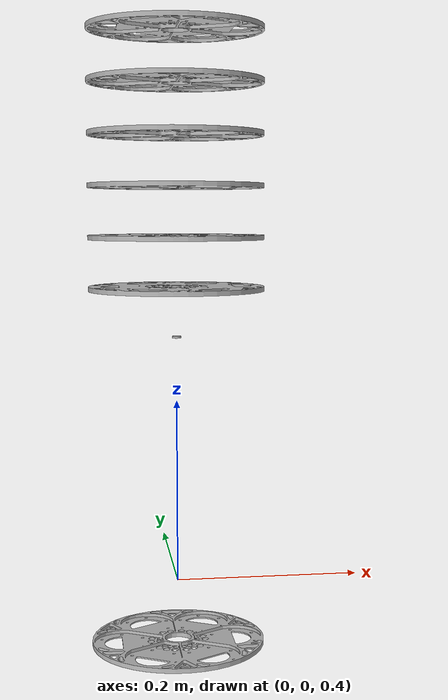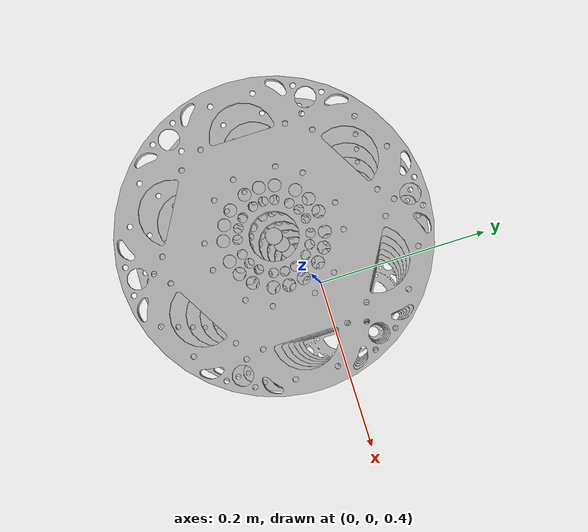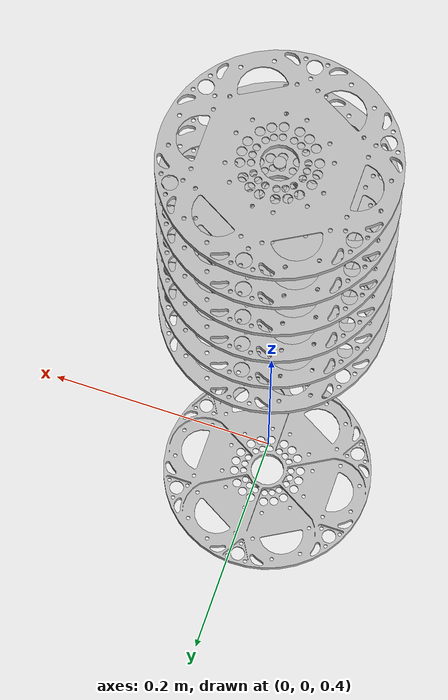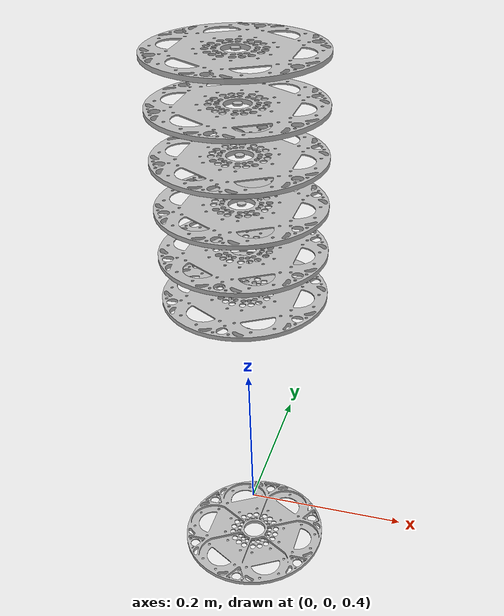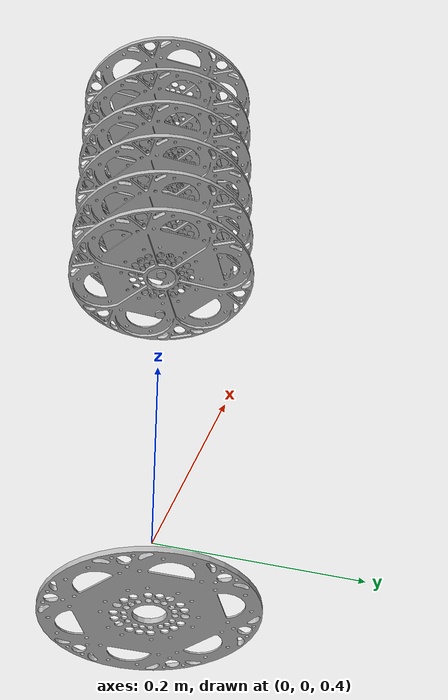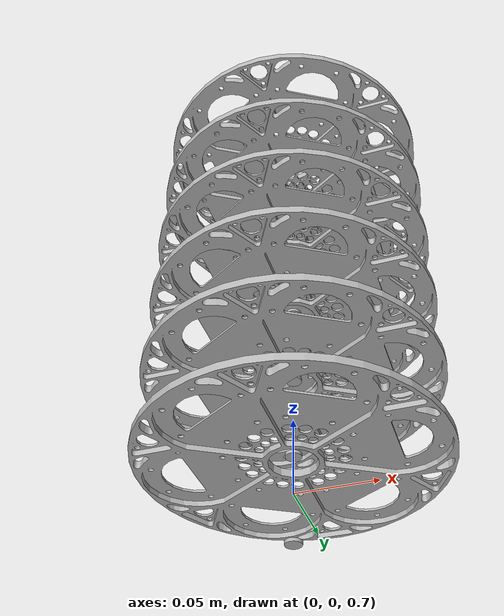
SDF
<sdf version='1.7'>
  <model name='origarmRigidKE'>
    <joint name='fixed' type='fixed'>
      <pose relative_to='__model__'>0 0 1 3.14159 -0 0</pose>
      <parent>world</parent>
      <child>plate_-1</child>
    </joint>
    <link name='plate_-1'>
      <pose relative_to='fixed'>0 0 0 0 -0 0</pose>
      <inertial>
        <pose>0 0 0 0 -0 0</pose>
        <mass>0.127</mass>
        <inertia>
          <ixx>0.00032197</ixx>
          <ixy>0</ixy>
          <ixz>0</ixz>
          <iyy>0.00032197</iyy>
          <iyz>0</iyz>
          <izz>0.00064284</izz>
        </inertia>
      </inertial>
      <collision name='plate_-1_collision'>
        <pose>0 0 0 0 -0 0</pose>
        <geometry>
          <cylinder>
            <length>0.005</length>
            <radius>0.095</radius>
          </cylinder>
        </geometry>
      </collision>
      <visual name='plate_-1_visual'>
        <pose>0 0 0 0 -0 0</pose>
        <geometry>
          <mesh>
            <scale>1 1 1</scale>
            <uri>model://origarm_ros/model/mesh/origarmPlate_m.STL</uri>
          </mesh>
        </geometry>
      </visual>
    </link>
    <joint name='phantom_joint_segment_0_1_beta' type='revolute'>
      <pose relative_to='plate_-1'>0 0 0 0 -0 0</pose>
      <parent>plate_-1</parent>
      <child>phantom_link_0_1</child>
      <axis>
        <xyz>0 0 1</xyz>
        <limit>
          <lower>-6.28319</lower>
          <upper>6.28319</upper>
          <effort>200</effort>
          <velocity>20</velocity>
        </limit>
        <dynamics>
          <damping>0.7</damping>
          <friction>0.3</friction>
          <spring_reference>0</spring_reference>
          <spring_stiffness>0</spring_stiffness>
        </dynamics>
      </axis>
      <physics>
        <ode>
          <limit>
            <cfm>0</cfm>
            <erp>0.2</erp>
          </limit>
        </ode>
      </physics>
    </joint>
    <link name='phantom_link_0_1'>
      <pose relative_to='phantom_joint_segment_0_1_beta'>0 0 0 0 -0 0</pose>
      <inertial>
        <pose>0 0 0 0 -0 0</pose>
        <mass>0.01</mass>
        <inertia>
          <ixx>0.001</ixx>
          <ixy>0</ixy>
          <ixz>0</ixz>
          <iyy>0.001</iyy>
          <iyz>0</iyz>
          <izz>0.001</izz>
        </inertia>
      </inertial>
      <visual name='phantom_link_0_1_visual'>
        <pose>0 0 0 0 -0 0</pose>
        <geometry>
          <cylinder>
            <length>0.002</length>
            <radius>0.005</radius>
          </cylinder>
        </geometry>
      </visual>
      <gravity>1</gravity>
      <velocity_decay>
        <linear>0.1</linear>
        <angular>0.1</angular>
      </velocity_decay>
      <self_collide>1</self_collide>
      <gravity>0</gravity>
    </link>
    <joint name='phantom_joint_segment_0_2_alpha2' type='revolute'>
      <pose relative_to='phantom_link_0_1'>0 0 0 0 -0 0</pose>
      <parent>phantom_link_0_1</parent>
      <child>phantom_link_0_2</child>
      <axis>
        <xyz>0 1 0</xyz>
        <limit>
          <lower>0</lower>
          <upper>0.25</upper>
          <effort>200</effort>
          <velocity>20</velocity>
        </limit>
        <dynamics>
          <damping>0.7</damping>
          <friction>0.3</friction>
          <spring_reference>0</spring_reference>
          <spring_stiffness>20</spring_stiffness>
        </dynamics>
      </axis>
      <physics>
        <ode>
          <limit>
            <cfm>0</cfm>
            <erp>0.2</erp>
          </limit>
        </ode>
      </physics>
    </joint>
    <link name='phantom_link_0_2'>
      <pose relative_to='phantom_joint_segment_0_2_alpha2'>0 0 0 0 -0 0</pose>
      <inertial>
        <pose>0 0 0 0 -0 0</pose>
        <mass>0.01</mass>
        <inertia>
          <ixx>0.001</ixx>
          <ixy>0</ixy>
          <ixz>0</ixz>
          <iyy>0.001</iyy>
          <iyz>0</iyz>
          <izz>0.001</izz>
        </inertia>
      </inertial>
      <visual name='phantom_link_0_2_visual'>
        <pose>0 0 0 0 -0 0</pose>
        <geometry>
          <cylinder>
            <length>0.002</length>
            <radius>0.005</radius>
          </cylinder>
        </geometry>
      </visual>
      <gravity>1</gravity>
      <velocity_decay>
        <linear>0.1</linear>
        <angular>0.1</angular>
      </velocity_decay>
      <self_collide>1</self_collide>
      <gravity>0</gravity>
    </link>
    <joint name='phantom_joint_segment_0_3_translation' type='prismatic'>
      <pose relative_to='phantom_link_0_2'>0 0 0.055 0 -0 0</pose>
      <parent>phantom_link_0_2</parent>
      <child>phantom_link_0_3</child>
      <axis>
        <xyz>0 0 1</xyz>
        <limit>
          <lower>-0.02</lower>
          <upper>0.03</upper>
          <effort>200</effort>
          <velocity>20</velocity>
        </limit>
        <dynamics>
          <damping>0.7</damping>
          <friction>0.5</friction>
          <spring_reference>0</spring_reference>
          <spring_stiffness>15000</spring_stiffness>
        </dynamics>
      </axis>
      <physics>
        <ode>
          <limit>
            <cfm>0</cfm>
            <erp>0.2</erp>
          </limit>
        </ode>
      </physics>
    </joint>
    <link name='phantom_link_0_3'>
      <pose relative_to='phantom_joint_segment_0_3_translation'>0 0 0 0 -0 0</pose>
      <inertial>
        <pose>0 0 0 0 -0 0</pose>
        <mass>0.01</mass>
        <inertia>
          <ixx>0.001</ixx>
          <ixy>0</ixy>
          <ixz>0</ixz>
          <iyy>0.001</iyy>
          <iyz>0</iyz>
          <izz>0.001</izz>
        </inertia>
      </inertial>
      <visual name='phantom_link_0_3_visual'>
        <pose>0 0 0 0 -0 0</pose>
        <geometry>
          <cylinder>
            <length>0.002</length>
            <radius>0.005</radius>
          </cylinder>
        </geometry>
      </visual>
      <gravity>1</gravity>
      <velocity_decay>
        <linear>0.1</linear>
        <angular>0.1</angular>
      </velocity_decay>
      <self_collide>1</self_collide>
      <gravity>0</gravity>
    </link>
    <joint name='phantom_joint_segment_0_4_alpha2' type='revolute'>
      <pose relative_to='phantom_link_0_3'>0 0 0 0 -0 0</pose>
      <parent>phantom_link_0_3</parent>
      <child>phantom_link_0_4</child>
      <axis>
        <xyz>0 1 0</xyz>
        <limit>
          <lower>0</lower>
          <upper>0.25</upper>
          <effort>200</effort>
          <velocity>20</velocity>
        </limit>
        <dynamics>
          <damping>0.7</damping>
          <friction>0.3</friction>
          <spring_reference>0</spring_reference>
          <spring_stiffness>20</spring_stiffness>
        </dynamics>
      </axis>
      <physics>
        <ode>
          <limit>
            <cfm>0</cfm>
            <erp>0.2</erp>
          </limit>
        </ode>
      </physics>
    </joint>
    <link name='phantom_link_0_4'>
      <pose relative_to='phantom_joint_segment_0_4_alpha2'>0 0 0 0 -0 0</pose>
      <inertial>
        <pose>0 0 0 0 -0 0</pose>
        <mass>0.01</mass>
        <inertia>
          <ixx>0.001</ixx>
          <ixy>0</ixy>
          <ixz>0</ixz>
          <iyy>0.001</iyy>
          <iyz>0</iyz>
          <izz>0.001</izz>
        </inertia>
      </inertial>
      <visual name='phantom_link_0_4_visual'>
        <pose>0 0 0 0 -0 0</pose>
        <geometry>
          <cylinder>
            <length>0.002</length>
            <radius>0.005</radius>
          </cylinder>
        </geometry>
      </visual>
      <gravity>1</gravity>
      <velocity_decay>
        <linear>0.1</linear>
        <angular>0.1</angular>
      </velocity_decay>
      <self_collide>1</self_collide>
      <gravity>0</gravity>
    </link>
    <joint name='phantom_joint_segment_0_5_betaN' type='revolute'>
      <pose relative_to='phantom_link_0_4'>0 0 0 0 -0 0</pose>
      <parent>phantom_link_0_4</parent>
      <child>plate_0</child>
      <axis>
        <xyz>0 0 1</xyz>
        <limit>
          <lower>-6.28319</lower>
          <upper>6.28319</upper>
          <effort>200</effort>
          <velocity>20</velocity>
        </limit>
        <dynamics>
          <damping>0.7</damping>
          <friction>0.3</friction>
          <spring_reference>0</spring_reference>
          <spring_stiffness>0</spring_stiffness>
        </dynamics>
      </axis>
      <physics>
        <ode>
          <limit>
            <cfm>0</cfm>
            <erp>0.2</erp>
          </limit>
        </ode>
      </physics>
    </joint>
    <link name='plate_0'>
      <pose relative_to='phantom_joint_segment_0_5_betaN'>0 0 0 0 -0 0</pose>
      <inertial>
        <pose>0 0 0 0 -0 0</pose>
        <mass>0.127</mass>
        <inertia>
          <ixx>0.00032197</ixx>
          <ixy>0</ixy>
          <ixz>0</ixz>
          <iyy>0.00032197</iyy>
          <iyz>0</iyz>
          <izz>0.00064284</izz>
        </inertia>
      </inertial>
      <collision name='plate_0_collision'>
        <pose>0 0 0 0 -0 0</pose>
        <geometry>
          <cylinder>
            <length>0.005</length>
            <radius>0.095</radius>
          </cylinder>
        </geometry>
        <surface>
          <contact>
            <ode>
              <kp>1e+15</kp>
              <kd>1e+13</kd>
            </ode>
          </contact>
          <friction>
            <ode>
              <mu>0.2</mu>
              <mu2>0.2</mu2>
            </ode>
          </friction>
        </surface>
      </collision>
      <visual name='plate_0_visual'>
        <pose>0 0 0 0 -0 0</pose>
        <geometry>
          <mesh>
            <scale>1 1 1</scale>
            <uri>model://origarm_ros/model/mesh/origarmPlate_m.STL</uri>
          </mesh>
        </geometry>
        <material>
          <script>
            <name>Gazebo/aluminum</name>
            <uri>file://media/materials/scripts/gazebo.material</uri>
          </script>
        </material>
      </visual>
      <gravity>1</gravity>
      <velocity_decay>
        <linear>0.1</linear>
        <angular>0.1</angular>
      </velocity_decay>
    </link>
    <joint name='phantom_joint_segment_1_1_beta' type='revolute'>
      <pose relative_to='plate_0'>0 0 0 0 -0 0</pose>
      <parent>plate_0</parent>
      <child>phantom_link_1_1</child>
      <axis>
        <xyz>0 0 1</xyz>
        <limit>
          <lower>-6.28319</lower>
          <upper>6.28319</upper>
          <effort>200</effort>
          <velocity>20</velocity>
        </limit>
        <dynamics>
          <damping>0.7</damping>
          <friction>0.3</friction>
          <spring_reference>0</spring_reference>
          <spring_stiffness>0</spring_stiffness>
        </dynamics>
      </axis>
      <physics>
        <ode>
          <limit>
            <cfm>0</cfm>
            <erp>0.2</erp>
          </limit>
        </ode>
      </physics>
    </joint>
    <link name='phantom_link_1_1'>
      <pose relative_to='phantom_joint_segment_1_1_beta'>0 0 0 0 -0 0</pose>
      <inertial>
        <pose>0 0 0 0 -0 0</pose>
        <mass>0.01</mass>
        <inertia>
          <ixx>0.001</ixx>
          <ixy>0</ixy>
          <ixz>0</ixz>
          <iyy>0.001</iyy>
          <iyz>0</iyz>
          <izz>0.001</izz>
        </inertia>
      </inertial>
      <visual name='phantom_link_1_1_visual'>
        <pose>0 0 0 0 -0 0</pose>
        <geometry>
          <cylinder>
            <length>0.002</length>
            <radius>0.005</radius>
          </cylinder>
        </geometry>
      </visual>
      <gravity>1</gravity>
      <velocity_decay>
        <linear>0.1</linear>
        <angular>0.1</angular>
      </velocity_decay>
      <self_collide>1</self_collide>
      <gravity>0</gravity>
    </link>
    <joint name='phantom_joint_segment_1_2_alpha2' type='revolute'>
      <pose relative_to='phantom_link_1_1'>0 0 0 0 -0 0</pose>
      <parent>phantom_link_1_1</parent>
      <child>phantom_link_1_2</child>
      <axis>
        <xyz>0 1 0</xyz>
        <limit>
          <lower>0</lower>
          <upper>0.25</upper>
          <effort>200</effort>
          <velocity>20</velocity>
        </limit>
        <dynamics>
          <damping>0.7</damping>
          <friction>0.3</friction>
          <spring_reference>0</spring_reference>
          <spring_stiffness>20</spring_stiffness>
        </dynamics>
      </axis>
      <physics>
        <ode>
          <limit>
            <cfm>0</cfm>
            <erp>0.2</erp>
          </limit>
        </ode>
      </physics>
    </joint>
    <link name='phantom_link_1_2'>
      <pose relative_to='phantom_joint_segment_1_2_alpha2'>0 0 0 0 -0 0</pose>
      <inertial>
        <pose>0 0 0 0 -0 0</pose>
        <mass>0.01</mass>
        <inertia>
          <ixx>0.001</ixx>
          <ixy>0</ixy>
          <ixz>0</ixz>
          <iyy>0.001</iyy>
          <iyz>0</iyz>
          <izz>0.001</izz>
        </inertia>
      </inertial>
      <visual name='phantom_link_1_2_visual'>
        <pose>0 0 0 0 -0 0</pose>
        <geometry>
          <cylinder>
            <length>0.002</length>
            <radius>0.005</radius>
          </cylinder>
        </geometry>
      </visual>
      <gravity>1</gravity>
      <velocity_decay>
        <linear>0.1</linear>
        <angular>0.1</angular>
      </velocity_decay>
      <self_collide>1</self_collide>
      <gravity>0</gravity>
    </link>
    <joint name='phantom_joint_segment_1_3_translation' type='prismatic'>
      <pose relative_to='phantom_link_1_2'>0 0 0.055 0 -0 0</pose>
      <parent>phantom_link_1_2</parent>
      <child>phantom_link_1_3</child>
      <axis>
        <xyz>0 0 1</xyz>
        <limit>
          <lower>-0.02</lower>
          <upper>0.03</upper>
          <effort>200</effort>
          <velocity>20</velocity>
        </limit>
        <dynamics>
          <damping>0.7</damping>
          <friction>0.5</friction>
          <spring_reference>0</spring_reference>
          <spring_stiffness>15000</spring_stiffness>
        </dynamics>
      </axis>
      <physics>
        <ode>
          <limit>
            <cfm>0</cfm>
            <erp>0.2</erp>
          </limit>
        </ode>
      </physics>
    </joint>
    <link name='phantom_link_1_3'>
      <pose relative_to='phantom_joint_segment_1_3_translation'>0 0 0 0 -0 0</pose>
      <inertial>
        <pose>0 0 0 0 -0 0</pose>
        <mass>0.01</mass>
        <inertia>
          <ixx>0.001</ixx>
          <ixy>0</ixy>
          <ixz>0</ixz>
          <iyy>0.001</iyy>
          <iyz>0</iyz>
          <izz>0.001</izz>
        </inertia>
      </inertial>
      <visual name='phantom_link_1_3_visual'>
        <pose>0 0 0 0 -0 0</pose>
        <geometry>
          <cylinder>
            <length>0.002</length>
            <radius>0.005</radius>
          </cylinder>
        </geometry>
      </visual>
      <gravity>1</gravity>
      <velocity_decay>
        <linear>0.1</linear>
        <angular>0.1</angular>
      </velocity_decay>
      <self_collide>1</self_collide>
      <gravity>0</gravity>
    </link>
    <joint name='phantom_joint_segment_1_4_alpha2' type='revolute'>
      <pose relative_to='phantom_link_1_3'>0 0 0 0 -0 0</pose>
      <parent>phantom_link_1_3</parent>
      <child>phantom_link_1_4</child>
      <axis>
        <xyz>0 1 0</xyz>
        <limit>
          <lower>0</lower>
          <upper>0.25</upper>
          <effort>200</effort>
          <velocity>20</velocity>
        </limit>
        <dynamics>
          <damping>0.7</damping>
          <friction>0.3</friction>
          <spring_reference>0</spring_reference>
          <spring_stiffness>20</spring_stiffness>
        </dynamics>
      </axis>
      <physics>
        <ode>
          <limit>
            <cfm>0</cfm>
            <erp>0.2</erp>
          </limit>
        </ode>
      </physics>
    </joint>
    <link name='phantom_link_1_4'>
      <pose relative_to='phantom_joint_segment_1_4_alpha2'>0 0 0 0 -0 0</pose>
      <inertial>
        <pose>0 0 0 0 -0 0</pose>
        <mass>0.01</mass>
        <inertia>
          <ixx>0.001</ixx>
          <ixy>0</ixy>
          <ixz>0</ixz>
          <iyy>0.001</iyy>
          <iyz>0</iyz>
          <izz>0.001</izz>
        </inertia>
      </inertial>
      <visual name='phantom_link_1_4_visual'>
        <pose>0 0 0 0 -0 0</pose>
        <geometry>
          <cylinder>
            <length>0.002</length>
            <radius>0.005</radius>
          </cylinder>
        </geometry>
      </visual>
      <gravity>1</gravity>
      <velocity_decay>
        <linear>0.1</linear>
        <angular>0.1</angular>
      </velocity_decay>
      <self_collide>1</self_collide>
      <gravity>0</gravity>
    </link>
    <joint name='phantom_joint_segment_1_5_betaN' type='revolute'>
      <pose relative_to='phantom_link_1_4'>0 0 0 0 -0 0</pose>
      <parent>phantom_link_1_4</parent>
      <child>plate_1</child>
      <axis>
        <xyz>0 0 1</xyz>
        <limit>
          <lower>-6.28319</lower>
          <upper>6.28319</upper>
          <effort>200</effort>
          <velocity>20</velocity>
        </limit>
        <dynamics>
          <damping>0.7</damping>
          <friction>0.3</friction>
          <spring_reference>0</spring_reference>
          <spring_stiffness>0</spring_stiffness>
        </dynamics>
      </axis>
      <physics>
        <ode>
          <limit>
            <cfm>0</cfm>
            <erp>0.2</erp>
          </limit>
        </ode>
      </physics>
    </joint>
    <link name='plate_1'>
      <pose relative_to='phantom_joint_segment_1_5_betaN'>0 0 0 0 -0 0</pose>
      <inertial>
        <pose>0 0 0 0 -0 0</pose>
        <mass>0.127</mass>
        <inertia>
          <ixx>0.00032197</ixx>
          <ixy>0</ixy>
          <ixz>0</ixz>
          <iyy>0.00032197</iyy>
          <iyz>0</iyz>
          <izz>0.00064284</izz>
        </inertia>
      </inertial>
      <collision name='plate_1_collision'>
        <pose>0 0 0 0 -0 0</pose>
        <geometry>
          <cylinder>
            <length>0.005</length>
            <radius>0.095</radius>
          </cylinder>
        </geometry>
        <surface>
          <contact>
            <ode>
              <kp>1e+15</kp>
              <kd>1e+13</kd>
            </ode>
          </contact>
          <friction>
            <ode>
              <mu>0.2</mu>
              <mu2>0.2</mu2>
            </ode>
          </friction>
        </surface>
      </collision>
      <visual name='plate_1_visual'>
        <pose>0 0 0 0 -0 0</pose>
        <geometry>
          <mesh>
            <scale>1 1 1</scale>
            <uri>model://origarm_ros/model/mesh/origarmPlate_m.STL</uri>
          </mesh>
        </geometry>
        <material>
          <script>
            <name>Gazebo/aluminum</name>
            <uri>file://media/materials/scripts/gazebo.material</uri>
          </script>
        </material>
      </visual>
      <gravity>1</gravity>
      <velocity_decay>
        <linear>0.1</linear>
        <angular>0.1</angular>
      </velocity_decay>
    </link>
    <joint name='phantom_joint_segment_2_1_beta' type='revolute'>
      <pose relative_to='plate_1'>0 0 0 0 -0 0</pose>
      <parent>plate_1</parent>
      <child>phantom_link_2_1</child>
      <axis>
        <xyz>0 0 1</xyz>
        <limit>
          <lower>-6.28319</lower>
          <upper>6.28319</upper>
          <effort>200</effort>
          <velocity>20</velocity>
        </limit>
        <dynamics>
          <damping>0.7</damping>
          <friction>0.3</friction>
          <spring_reference>0</spring_reference>
          <spring_stiffness>0</spring_stiffness>
        </dynamics>
      </axis>
      <physics>
        <ode>
          <limit>
            <cfm>0</cfm>
            <erp>0.2</erp>
          </limit>
        </ode>
      </physics>
    </joint>
    <link name='phantom_link_2_1'>
      <pose relative_to='phantom_joint_segment_2_1_beta'>0 0 0 0 -0 0</pose>
      <inertial>
        <pose>0 0 0 0 -0 0</pose>
        <mass>0.01</mass>
        <inertia>
          <ixx>0.001</ixx>
          <ixy>0</ixy>
          <ixz>0</ixz>
          <iyy>0.001</iyy>
          <iyz>0</iyz>
          <izz>0.001</izz>
        </inertia>
      </inertial>
      <visual name='phantom_link_2_1_visual'>
        <pose>0 0 0 0 -0 0</pose>
        <geometry>
          <cylinder>
            <length>0.002</length>
            <radius>0.005</radius>
          </cylinder>
        </geometry>
      </visual>
      <gravity>1</gravity>
      <velocity_decay>
        <linear>0.1</linear>
        <angular>0.1</angular>
      </velocity_decay>
      <self_collide>1</self_collide>
      <gravity>0</gravity>
    </link>
    <joint name='phantom_joint_segment_2_2_alpha2' type='revolute'>
      <pose relative_to='phantom_link_2_1'>0 0 0 0 -0 0</pose>
      <parent>phantom_link_2_1</parent>
      <child>phantom_link_2_2</child>
      <axis>
        <xyz>0 1 0</xyz>
        <limit>
          <lower>0</lower>
          <upper>0.25</upper>
          <effort>200</effort>
          <velocity>20</velocity>
        </limit>
        <dynamics>
          <damping>0.7</damping>
          <friction>0.3</friction>
          <spring_reference>0</spring_reference>
          <spring_stiffness>20</spring_stiffness>
        </dynamics>
      </axis>
      <physics>
        <ode>
          <limit>
            <cfm>0</cfm>
            <erp>0.2</erp>
          </limit>
        </ode>
      </physics>
    </joint>
    <link name='phantom_link_2_2'>
      <pose relative_to='phantom_joint_segment_2_2_alpha2'>0 0 0 0 -0 0</pose>
      <inertial>
        <pose>0 0 0 0 -0 0</pose>
        <mass>0.01</mass>
        <inertia>
          <ixx>0.001</ixx>
          <ixy>0</ixy>
          <ixz>0</ixz>
          <iyy>0.001</iyy>
          <iyz>0</iyz>
          <izz>0.001</izz>
        </inertia>
      </inertial>
      <visual name='phantom_link_2_2_visual'>
        <pose>0 0 0 0 -0 0</pose>
        <geometry>
          <cylinder>
            <length>0.002</length>
            <radius>0.005</radius>
          </cylinder>
        </geometry>
      </visual>
      <gravity>1</gravity>
      <velocity_decay>
        <linear>0.1</linear>
        <angular>0.1</angular>
      </velocity_decay>
      <self_collide>1</self_collide>
      <gravity>0</gravity>
    </link>
    <joint name='phantom_joint_segment_2_3_translation' type='prismatic'>
      <pose relative_to='phantom_link_2_2'>0 0 0.055 0 -0 0</pose>
      <parent>phantom_link_2_2</parent>
      <child>phantom_link_2_3</child>
      <axis>
        <xyz>0 0 1</xyz>
        <limit>
          <lower>-0.02</lower>
          <upper>0.03</upper>
          <effort>200</effort>
          <velocity>20</velocity>
        </limit>
        <dynamics>
          <damping>0.7</damping>
          <friction>0.5</friction>
          <spring_reference>0</spring_reference>
          <spring_stiffness>15000</spring_stiffness>
        </dynamics>
      </axis>
      <physics>
        <ode>
          <limit>
            <cfm>0</cfm>
            <erp>0.2</erp>
          </limit>
        </ode>
      </physics>
    </joint>
    <link name='phantom_link_2_3'>
      <pose relative_to='phantom_joint_segment_2_3_translation'>0 0 0 0 -0 0</pose>
      <inertial>
        <pose>0 0 0 0 -0 0</pose>
        <mass>0.01</mass>
        <inertia>
          <ixx>0.001</ixx>
          <ixy>0</ixy>
          <ixz>0</ixz>
          <iyy>0.001</iyy>
          <iyz>0</iyz>
          <izz>0.001</izz>
        </inertia>
      </inertial>
      <visual name='phantom_link_2_3_visual'>
        <pose>0 0 0 0 -0 0</pose>
        <geometry>
          <cylinder>
            <length>0.002</length>
            <radius>0.005</radius>
          </cylinder>
        </geometry>
      </visual>
      <gravity>1</gravity>
      <velocity_decay>
        <linear>0.1</linear>
        <angular>0.1</angular>
      </velocity_decay>
      <self_collide>1</self_collide>
      <gravity>0</gravity>
    </link>
    <joint name='phantom_joint_segment_2_4_alpha2' type='revolute'>
      <pose relative_to='phantom_link_2_3'>0 0 0 0 -0 0</pose>
      <parent>phantom_link_2_3</parent>
      <child>phantom_link_2_4</child>
      <axis>
        <xyz>0 1 0</xyz>
        <limit>
          <lower>0</lower>
          <upper>0.25</upper>
          <effort>200</effort>
          <velocity>20</velocity>
        </limit>
        <dynamics>
          <damping>0.7</damping>
          <friction>0.3</friction>
          <spring_reference>0</spring_reference>
          <spring_stiffness>20</spring_stiffness>
        </dynamics>
      </axis>
      <physics>
        <ode>
          <limit>
            <cfm>0</cfm>
            <erp>0.2</erp>
          </limit>
        </ode>
      </physics>
    </joint>
    <link name='phantom_link_2_4'>
      <pose relative_to='phantom_joint_segment_2_4_alpha2'>0 0 0 0 -0 0</pose>
      <inertial>
        <pose>0 0 0 0 -0 0</pose>
        <mass>0.01</mass>
        <inertia>
          <ixx>0.001</ixx>
          <ixy>0</ixy>
          <ixz>0</ixz>
          <iyy>0.001</iyy>
          <iyz>0</iyz>
          <izz>0.001</izz>
        </inertia>
      </inertial>
      <visual name='phantom_link_2_4_visual'>
        <pose>0 0 0 0 -0 0</pose>
        <geometry>
          <cylinder>
            <length>0.002</length>
            <radius>0.005</radius>
          </cylinder>
        </geometry>
      </visual>
      <gravity>1</gravity>
      <velocity_decay>
        <linear>0.1</linear>
        <angular>0.1</angular>
      </velocity_decay>
      <self_collide>1</self_collide>
      <gravity>0</gravity>
    </link>
    <joint name='phantom_joint_segment_2_5_betaN' type='revolute'>
      <pose relative_to='phantom_link_2_4'>0 0 0 0 -0 0</pose>
      <parent>phantom_link_2_4</parent>
      <child>plate_2</child>
      <axis>
        <xyz>0 0 1</xyz>
        <limit>
          <lower>-6.28319</lower>
          <upper>6.28319</upper>
          <effort>200</effort>
          <velocity>20</velocity>
        </limit>
        <dynamics>
          <damping>0.7</damping>
          <friction>0.3</friction>
          <spring_reference>0</spring_reference>
          <spring_stiffness>0</spring_stiffness>
        </dynamics>
      </axis>
      <physics>
        <ode>
          <limit>
            <cfm>0</cfm>
            <erp>0.2</erp>
          </limit>
        </ode>
      </physics>
    </joint>
    <link name='plate_2'>
      <pose relative_to='phantom_joint_segment_2_5_betaN'>0 0 0 0 -0 0</pose>
      <inertial>
        <pose>0 0 0 0 -0 0</pose>
        <mass>0.127</mass>
        <inertia>
          <ixx>0.00032197</ixx>
          <ixy>0</ixy>
          <ixz>0</ixz>
          <iyy>0.00032197</iyy>
          <iyz>0</iyz>
          <izz>0.00064284</izz>
        </inertia>
      </inertial>
      <collision name='plate_2_collision'>
        <pose>0 0 0 0 -0 0</pose>
        <geometry>
          <cylinder>
            <length>0.005</length>
            <radius>0.095</radius>
          </cylinder>
        </geometry>
        <surface>
          <contact>
            <ode>
              <kp>1e+15</kp>
              <kd>1e+13</kd>
            </ode>
          </contact>
          <friction>
            <ode>
              <mu>0.2</mu>
              <mu2>0.2</mu2>
            </ode>
          </friction>
        </surface>
      </collision>
      <visual name='plate_2_visual'>
        <pose>0 0 0 0 -0 0</pose>
        <geometry>
          <mesh>
            <scale>1 1 1</scale>
            <uri>model://origarm_ros/model/mesh/origarmPlate_m.STL</uri>
          </mesh>
        </geometry>
        <material>
          <script>
            <name>Gazebo/aluminum</name>
            <uri>file://media/materials/scripts/gazebo.material</uri>
          </script>
        </material>
      </visual>
      <gravity>1</gravity>
      <velocity_decay>
        <linear>0.1</linear>
        <angular>0.1</angular>
      </velocity_decay>
    </link>
    <joint name='phantom_joint_segment_3_1_beta' type='revolute'>
      <pose relative_to='plate_2'>0 0 0 0 -0 0</pose>
      <parent>plate_2</parent>
      <child>phantom_link_3_1</child>
      <axis>
        <xyz>0 0 1</xyz>
        <limit>
          <lower>-6.28319</lower>
          <upper>6.28319</upper>
          <effort>200</effort>
          <velocity>20</velocity>
        </limit>
        <dynamics>
          <damping>0.7</damping>
          <friction>0.3</friction>
          <spring_reference>0</spring_reference>
          <spring_stiffness>0</spring_stiffness>
        </dynamics>
      </axis>
      <physics>
        <ode>
          <limit>
            <cfm>0</cfm>
            <erp>0.2</erp>
          </limit>
        </ode>
      </physics>
    </joint>
    <link name='phantom_link_3_1'>
      <pose relative_to='phantom_joint_segment_3_1_beta'>0 0 0 0 -0 0</pose>
      <inertial>
        <pose>0 0 0 0 -0 0</pose>
        <mass>0.01</mass>
        <inertia>
          <ixx>0.001</ixx>
          <ixy>0</ixy>
          <ixz>0</ixz>
          <iyy>0.001</iyy>
          <iyz>0</iyz>
          <izz>0.001</izz>
        </inertia>
      </inertial>
      <visual name='phantom_link_3_1_visual'>
        <pose>0 0 0 0 -0 0</pose>
        <geometry>
          <cylinder>
            <length>0.002</length>
            <radius>0.005</radius>
          </cylinder>
        </geometry>
      </visual>
      <gravity>1</gravity>
      <velocity_decay>
        <linear>0.1</linear>
        <angular>0.1</angular>
      </velocity_decay>
      <self_collide>1</self_collide>
      <gravity>0</gravity>
    </link>
    <joint name='phantom_joint_segment_3_2_alpha2' type='revolute'>
      <pose relative_to='phantom_link_3_1'>0 0 0 0 -0 0</pose>
      <parent>phantom_link_3_1</parent>
      <child>phantom_link_3_2</child>
      <axis>
        <xyz>0 1 0</xyz>
        <limit>
          <lower>0</lower>
          <upper>0.25</upper>
          <effort>200</effort>
          <velocity>20</velocity>
        </limit>
        <dynamics>
          <damping>0.7</damping>
          <friction>0.3</friction>
          <spring_reference>0</spring_reference>
          <spring_stiffness>20</spring_stiffness>
        </dynamics>
      </axis>
      <physics>
        <ode>
          <limit>
            <cfm>0</cfm>
            <erp>0.2</erp>
          </limit>
        </ode>
      </physics>
    </joint>
    <link name='phantom_link_3_2'>
      <pose relative_to='phantom_joint_segment_3_2_alpha2'>0 0 0 0 -0 0</pose>
      <inertial>
        <pose>0 0 0 0 -0 0</pose>
        <mass>0.01</mass>
        <inertia>
          <ixx>0.001</ixx>
          <ixy>0</ixy>
          <ixz>0</ixz>
          <iyy>0.001</iyy>
          <iyz>0</iyz>
          <izz>0.001</izz>
        </inertia>
      </inertial>
      <visual name='phantom_link_3_2_visual'>
        <pose>0 0 0 0 -0 0</pose>
        <geometry>
          <cylinder>
            <length>0.002</length>
            <radius>0.005</radius>
          </cylinder>
        </geometry>
      </visual>
      <gravity>1</gravity>
      <velocity_decay>
        <linear>0.1</linear>
        <angular>0.1</angular>
      </velocity_decay>
      <self_collide>1</self_collide>
      <gravity>0</gravity>
    </link>
    <joint name='phantom_joint_segment_3_3_translation' type='prismatic'>
      <pose relative_to='phantom_link_3_2'>0 0 0.055 0 -0 0</pose>
      <parent>phantom_link_3_2</parent>
      <child>phantom_link_3_3</child>
      <axis>
        <xyz>0 0 1</xyz>
        <limit>
          <lower>-0.02</lower>
          <upper>0.03</upper>
          <effort>200</effort>
          <velocity>20</velocity>
        </limit>
        <dynamics>
          <damping>0.7</damping>
          <friction>0.5</friction>
          <spring_reference>0</spring_reference>
          <spring_stiffness>15000</spring_stiffness>
        </dynamics>
      </axis>
      <physics>
        <ode>
          <limit>
            <cfm>0</cfm>
            <erp>0.2</erp>
          </limit>
        </ode>
      </physics>
    </joint>
    <link name='phantom_link_3_3'>
      <pose relative_to='phantom_joint_segment_3_3_translation'>0 0 0 0 -0 0</pose>
      <inertial>
        <pose>0 0 0 0 -0 0</pose>
        <mass>0.01</mass>
        <inertia>
          <ixx>0.001</ixx>
          <ixy>0</ixy>
          <ixz>0</ixz>
          <iyy>0.001</iyy>
          <iyz>0</iyz>
          <izz>0.001</izz>
        </inertia>
      </inertial>
      <visual name='phantom_link_3_3_visual'>
        <pose>0 0 0 0 -0 0</pose>
        <geometry>
          <cylinder>
            <length>0.002</length>
            <radius>0.005</radius>
          </cylinder>
        </geometry>
      </visual>
      <gravity>1</gravity>
      <velocity_decay>
        <linear>0.1</linear>
        <angular>0.1</angular>
      </velocity_decay>
      <self_collide>1</self_collide>
      <gravity>0</gravity>
    </link>
    <joint name='phantom_joint_segment_3_4_alpha2' type='revolute'>
      <pose relative_to='phantom_link_3_3'>0 0 0 0 -0 0</pose>
      <parent>phantom_link_3_3</parent>
      <child>phantom_link_3_4</child>
      <axis>
        <xyz>0 1 0</xyz>
        <limit>
          <lower>0</lower>
          <upper>0.25</upper>
          <effort>200</effort>
          <velocity>20</velocity>
        </limit>
        <dynamics>
          <damping>0.7</damping>
          <friction>0.3</friction>
          <spring_reference>0</spring_reference>
          <spring_stiffness>20</spring_stiffness>
        </dynamics>
      </axis>
      <physics>
        <ode>
          <limit>
            <cfm>0</cfm>
            <erp>0.2</erp>
          </limit>
        </ode>
      </physics>
    </joint>
    <link name='phantom_link_3_4'>
      <pose relative_to='phantom_joint_segment_3_4_alpha2'>0 0 0 0 -0 0</pose>
      <inertial>
        <pose>0 0 0 0 -0 0</pose>
        <mass>0.01</mass>
        <inertia>
          <ixx>0.001</ixx>
          <ixy>0</ixy>
          <ixz>0</ixz>
          <iyy>0.001</iyy>
          <iyz>0</iyz>
          <izz>0.001</izz>
        </inertia>
      </inertial>
      <visual name='phantom_link_3_4_visual'>
        <pose>0 0 0 0 -0 0</pose>
        <geometry>
          <cylinder>
            <length>0.002</length>
            <radius>0.005</radius>
          </cylinder>
        </geometry>
      </visual>
      <gravity>1</gravity>
      <velocity_decay>
        <linear>0.1</linear>
        <angular>0.1</angular>
      </velocity_decay>
      <self_collide>1</self_collide>
      <gravity>0</gravity>
    </link>
    <joint name='phantom_joint_segment_3_5_betaN' type='revolute'>
      <pose relative_to='phantom_link_3_4'>0 0 0 0 -0 0</pose>
      <parent>phantom_link_3_4</parent>
      <child>plate_3</child>
      <axis>
        <xyz>0 0 1</xyz>
        <limit>
          <lower>-6.28319</lower>
          <upper>6.28319</upper>
          <effort>200</effort>
          <velocity>20</velocity>
        </limit>
        <dynamics>
          <damping>0.7</damping>
          <friction>0.3</friction>
          <spring_reference>0</spring_reference>
          <spring_stiffness>0</spring_stiffness>
        </dynamics>
      </axis>
      <physics>
        <ode>
          <limit>
            <cfm>0</cfm>
            <erp>0.2</erp>
          </limit>
        </ode>
      </physics>
    </joint>
    <link name='plate_3'>
      <pose relative_to='phantom_joint_segment_3_5_betaN'>0 0 0 0 -0 0</pose>
      <inertial>
        <pose>0 0 0 0 -0 0</pose>
        <mass>0.127</mass>
        <inertia>
          <ixx>0.00032197</ixx>
          <ixy>0</ixy>
          <ixz>0</ixz>
          <iyy>0.00032197</iyy>
          <iyz>0</iyz>
          <izz>0.00064284</izz>
        </inertia>
      </inertial>
      <collision name='plate_3_collision'>
        <pose>0 0 0 0 -0 0</pose>
        <geometry>
          <cylinder>
            <length>0.005</length>
            <radius>0.095</radius>
          </cylinder>
        </geometry>
        <surface>
          <contact>
            <ode>
              <kp>1e+15</kp>
              <kd>1e+13</kd>
            </ode>
          </contact>
          <friction>
            <ode>
              <mu>0.2</mu>
              <mu2>0.2</mu2>
            </ode>
          </friction>
        </surface>
      </collision>
      <visual name='plate_3_visual'>
        <pose>0 0 0 0 -0 0</pose>
        <geometry>
          <mesh>
            <scale>1 1 1</scale>
            <uri>model://origarm_ros/model/mesh/origarmPlate_m.STL</uri>
          </mesh>
        </geometry>
        <material>
          <script>
            <name>Gazebo/aluminum</name>
            <uri>file://media/materials/scripts/gazebo.material</uri>
          </script>
        </material>
      </visual>
      <gravity>1</gravity>
      <velocity_decay>
        <linear>0.1</linear>
        <angular>0.1</angular>
      </velocity_decay>
    </link>
    <joint name='phantom_joint_segment_4_1_beta' type='revolute'>
      <pose relative_to='plate_3'>0 0 0 0 -0 0</pose>
      <parent>plate_3</parent>
      <child>phantom_link_4_1</child>
      <axis>
        <xyz>0 0 1</xyz>
        <limit>
          <lower>-6.28319</lower>
          <upper>6.28319</upper>
          <effort>200</effort>
          <velocity>20</velocity>
        </limit>
        <dynamics>
          <damping>0.7</damping>
          <friction>0.3</friction>
          <spring_reference>0</spring_reference>
          <spring_stiffness>0</spring_stiffness>
        </dynamics>
      </axis>
      <physics>
        <ode>
          <limit>
            <cfm>0</cfm>
            <erp>0.2</erp>
          </limit>
        </ode>
      </physics>
    </joint>
    <link name='phantom_link_4_1'>
      <pose relative_to='phantom_joint_segment_4_1_beta'>0 0 0 0 -0 0</pose>
      <inertial>
        <pose>0 0 0 0 -0 0</pose>
        <mass>0.01</mass>
        <inertia>
          <ixx>0.001</ixx>
          <ixy>0</ixy>
          <ixz>0</ixz>
          <iyy>0.001</iyy>
          <iyz>0</iyz>
          <izz>0.001</izz>
        </inertia>
      </inertial>
      <visual name='phantom_link_4_1_visual'>
        <pose>0 0 0 0 -0 0</pose>
        <geometry>
          <cylinder>
            <length>0.002</length>
            <radius>0.005</radius>
          </cylinder>
        </geometry>
      </visual>
      <gravity>1</gravity>
      <velocity_decay>
        <linear>0.1</linear>
        <angular>0.1</angular>
      </velocity_decay>
      <self_collide>1</self_collide>
      <gravity>0</gravity>
    </link>
    <joint name='phantom_joint_segment_4_2_alpha2' type='revolute'>
      <pose relative_to='phantom_link_4_1'>0 0 0 0 -0 0</pose>
      <parent>phantom_link_4_1</parent>
      <child>phantom_link_4_2</child>
      <axis>
        <xyz>0 1 0</xyz>
        <limit>
          <lower>0</lower>
          <upper>0.25</upper>
          <effort>200</effort>
          <velocity>20</velocity>
        </limit>
        <dynamics>
          <damping>0.7</damping>
          <friction>0.3</friction>
          <spring_reference>0</spring_reference>
          <spring_stiffness>20</spring_stiffness>
        </dynamics>
      </axis>
      <physics>
        <ode>
          <limit>
            <cfm>0</cfm>
            <erp>0.2</erp>
          </limit>
        </ode>
      </physics>
    </joint>
    <link name='phantom_link_4_2'>
      <pose relative_to='phantom_joint_segment_4_2_alpha2'>0 0 0 0 -0 0</pose>
      <inertial>
        <pose>0 0 0 0 -0 0</pose>
        <mass>0.01</mass>
        <inertia>
          <ixx>0.001</ixx>
          <ixy>0</ixy>
          <ixz>0</ixz>
          <iyy>0.001</iyy>
          <iyz>0</iyz>
          <izz>0.001</izz>
        </inertia>
      </inertial>
      <visual name='phantom_link_4_2_visual'>
        <pose>0 0 0 0 -0 0</pose>
        <geometry>
          <cylinder>
            <length>0.002</length>
            <radius>0.005</radius>
          </cylinder>
        </geometry>
      </visual>
      <gravity>1</gravity>
      <velocity_decay>
        <linear>0.1</linear>
        <angular>0.1</angular>
      </velocity_decay>
      <self_collide>1</self_collide>
      <gravity>0</gravity>
    </link>
    <joint name='phantom_joint_segment_4_3_translation' type='prismatic'>
      <pose relative_to='phantom_link_4_2'>0 0 0.055 0 -0 0</pose>
      <parent>phantom_link_4_2</parent>
      <child>phantom_link_4_3</child>
      <axis>
        <xyz>0 0 1</xyz>
        <limit>
          <lower>-0.02</lower>
          <upper>0.03</upper>
          <effort>200</effort>
          <velocity>20</velocity>
        </limit>
        <dynamics>
          <damping>0.7</damping>
          <friction>0.5</friction>
          <spring_reference>0</spring_reference>
          <spring_stiffness>15000</spring_stiffness>
        </dynamics>
      </axis>
      <physics>
        <ode>
          <limit>
            <cfm>0</cfm>
            <erp>0.2</erp>
          </limit>
        </ode>
      </physics>
    </joint>
    <link name='phantom_link_4_3'>
      <pose relative_to='phantom_joint_segment_4_3_translation'>0 0 0 0 -0 0</pose>
      <inertial>
        <pose>0 0 0 0 -0 0</pose>
        <mass>0.01</mass>
        <inertia>
          <ixx>0.001</ixx>
          <ixy>0</ixy>
          <ixz>0</ixz>
          <iyy>0.001</iyy>
          <iyz>0</iyz>
          <izz>0.001</izz>
        </inertia>
      </inertial>
      <visual name='phantom_link_4_3_visual'>
        <pose>0 0 0 0 -0 0</pose>
        <geometry>
          <cylinder>
            <length>0.002</length>
            <radius>0.005</radius>
          </cylinder>
        </geometry>
      </visual>
      <gravity>1</gravity>
      <velocity_decay>
        <linear>0.1</linear>
        <angular>0.1</angular>
      </velocity_decay>
      <self_collide>1</self_collide>
      <gravity>0</gravity>
    </link>
    <joint name='phantom_joint_segment_4_4_alpha2' type='revolute'>
      <pose relative_to='phantom_link_4_3'>0 0 0 0 -0 0</pose>
      <parent>phantom_link_4_3</parent>
      <child>phantom_link_4_4</child>
      <axis>
        <xyz>0 1 0</xyz>
        <limit>
          <lower>0</lower>
          <upper>0.25</upper>
          <effort>200</effort>
          <velocity>20</velocity>
        </limit>
        <dynamics>
          <damping>0.7</damping>
          <friction>0.3</friction>
          <spring_reference>0</spring_reference>
          <spring_stiffness>20</spring_stiffness>
        </dynamics>
      </axis>
      <physics>
        <ode>
          <limit>
            <cfm>0</cfm>
            <erp>0.2</erp>
          </limit>
        </ode>
      </physics>
    </joint>
    <link name='phantom_link_4_4'>
      <pose relative_to='phantom_joint_segment_4_4_alpha2'>0 0 0 0 -0 0</pose>
      <inertial>
        <pose>0 0 0 0 -0 0</pose>
        <mass>0.01</mass>
        <inertia>
          <ixx>0.001</ixx>
          <ixy>0</ixy>
          <ixz>0</ixz>
          <iyy>0.001</iyy>
          <iyz>0</iyz>
          <izz>0.001</izz>
        </inertia>
      </inertial>
      <visual name='phantom_link_4_4_visual'>
        <pose>0 0 0 0 -0 0</pose>
        <geometry>
          <cylinder>
            <length>0.002</length>
            <radius>0.005</radius>
          </cylinder>
        </geometry>
      </visual>
      <gravity>1</gravity>
      <velocity_decay>
        <linear>0.1</linear>
        <angular>0.1</angular>
      </velocity_decay>
      <self_collide>1</self_collide>
      <gravity>0</gravity>
    </link>
    <joint name='phantom_joint_segment_4_5_betaN' type='revolute'>
      <pose relative_to='phantom_link_4_4'>0 0 0 0 -0 0</pose>
      <parent>phantom_link_4_4</parent>
      <child>plate_4</child>
      <axis>
        <xyz>0 0 1</xyz>
        <limit>
          <lower>-6.28319</lower>
          <upper>6.28319</upper>
          <effort>200</effort>
          <velocity>20</velocity>
        </limit>
        <dynamics>
          <damping>0.7</damping>
          <friction>0.3</friction>
          <spring_reference>0</spring_reference>
          <spring_stiffness>0</spring_stiffness>
        </dynamics>
      </axis>
      <physics>
        <ode>
          <limit>
            <cfm>0</cfm>
            <erp>0.2</erp>
          </limit>
        </ode>
      </physics>
    </joint>
    <link name='plate_4'>
      <pose relative_to='phantom_joint_segment_4_5_betaN'>0 0 0 0 -0 0</pose>
      <inertial>
        <pose>0 0 0 0 -0 0</pose>
        <mass>0.127</mass>
        <inertia>
          <ixx>0.00032197</ixx>
          <ixy>0</ixy>
          <ixz>0</ixz>
          <iyy>0.00032197</iyy>
          <iyz>0</iyz>
          <izz>0.00064284</izz>
        </inertia>
      </inertial>
      <collision name='plate_4_collision'>
        <pose>0 0 0 0 -0 0</pose>
        <geometry>
          <cylinder>
            <length>0.005</length>
            <radius>0.095</radius>
          </cylinder>
        </geometry>
        <surface>
          <contact>
            <ode>
              <kp>1e+15</kp>
              <kd>1e+13</kd>
            </ode>
          </contact>
          <friction>
            <ode>
              <mu>0.2</mu>
              <mu2>0.2</mu2>
            </ode>
          </friction>
        </surface>
      </collision>
      <visual name='plate_4_visual'>
        <pose>0 0 0 0 -0 0</pose>
        <geometry>
          <mesh>
            <scale>1 1 1</scale>
            <uri>model://origarm_ros/model/mesh/origarmPlate_m.STL</uri>
          </mesh>
        </geometry>
        <material>
          <script>
            <name>Gazebo/aluminum</name>
            <uri>file://media/materials/scripts/gazebo.material</uri>
          </script>
        </material>
      </visual>
      <gravity>1</gravity>
      <velocity_decay>
        <linear>0.1</linear>
        <angular>0.1</angular>
      </velocity_decay>
    </link>
    <joint name='phantom_joint_segment_5_1_beta' type='revolute'>
      <pose relative_to='plate_4'>0 0 0 0 -0 0</pose>
      <parent>plate_4</parent>
      <child>phantom_link_5_1</child>
      <axis>
        <xyz>0 0 1</xyz>
        <limit>
          <lower>-6.28319</lower>
          <upper>6.28319</upper>
          <effort>200</effort>
          <velocity>20</velocity>
        </limit>
        <dynamics>
          <damping>0.7</damping>
          <friction>0.3</friction>
          <spring_reference>0</spring_reference>
          <spring_stiffness>0</spring_stiffness>
        </dynamics>
      </axis>
      <physics>
        <ode>
          <limit>
            <cfm>0</cfm>
            <erp>0.2</erp>
          </limit>
        </ode>
      </physics>
    </joint>
    <link name='phantom_link_5_1'>
      <pose relative_to='phantom_joint_segment_5_1_beta'>0 0 0 0 -0 0</pose>
      <inertial>
        <pose>0 0 0 0 -0 0</pose>
        <mass>0.01</mass>
        <inertia>
          <ixx>0.001</ixx>
          <ixy>0</ixy>
          <ixz>0</ixz>
          <iyy>0.001</iyy>
          <iyz>0</iyz>
          <izz>0.001</izz>
        </inertia>
      </inertial>
      <visual name='phantom_link_5_1_visual'>
        <pose>0 0 0 0 -0 0</pose>
        <geometry>
          <cylinder>
            <length>0.002</length>
            <radius>0.005</radius>
          </cylinder>
        </geometry>
      </visual>
      <gravity>1</gravity>
      <velocity_decay>
        <linear>0.1</linear>
        <angular>0.1</angular>
      </velocity_decay>
      <self_collide>1</self_collide>
      <gravity>0</gravity>
    </link>
    <joint name='phantom_joint_segment_5_2_alpha2' type='revolute'>
      <pose relative_to='phantom_link_5_1'>0 0 0 0 -0 0</pose>
      <parent>phantom_link_5_1</parent>
      <child>phantom_link_5_2</child>
      <axis>
        <xyz>0 1 0</xyz>
        <limit>
          <lower>0</lower>
          <upper>0.25</upper>
          <effort>200</effort>
          <velocity>20</velocity>
        </limit>
        <dynamics>
          <damping>0.7</damping>
          <friction>0.3</friction>
          <spring_reference>0</spring_reference>
          <spring_stiffness>20</spring_stiffness>
        </dynamics>
      </axis>
      <physics>
        <ode>
          <limit>
            <cfm>0</cfm>
            <erp>0.2</erp>
          </limit>
        </ode>
      </physics>
    </joint>
    <link name='phantom_link_5_2'>
      <pose relative_to='phantom_joint_segment_5_2_alpha2'>0 0 0 0 -0 0</pose>
      <inertial>
        <pose>0 0 0 0 -0 0</pose>
        <mass>0.01</mass>
        <inertia>
          <ixx>0.001</ixx>
          <ixy>0</ixy>
          <ixz>0</ixz>
          <iyy>0.001</iyy>
          <iyz>0</iyz>
          <izz>0.001</izz>
        </inertia>
      </inertial>
      <visual name='phantom_link_5_2_visual'>
        <pose>0 0 0 0 -0 0</pose>
        <geometry>
          <cylinder>
            <length>0.002</length>
            <radius>0.005</radius>
          </cylinder>
        </geometry>
      </visual>
      <gravity>1</gravity>
      <velocity_decay>
        <linear>0.1</linear>
        <angular>0.1</angular>
      </velocity_decay>
      <self_collide>1</self_collide>
      <gravity>0</gravity>
    </link>
    <joint name='phantom_joint_segment_5_3_translation' type='prismatic'>
      <pose relative_to='phantom_link_5_2'>0 0 0.055 0 -0 0</pose>
      <parent>phantom_link_5_2</parent>
      <child>phantom_link_5_3</child>
      <axis>
        <xyz>0 0 1</xyz>
        <limit>
          <lower>-0.02</lower>
          <upper>0.03</upper>
          <effort>200</effort>
          <velocity>20</velocity>
        </limit>
        <dynamics>
          <damping>0.7</damping>
          <friction>0.5</friction>
          <spring_reference>0</spring_reference>
          <spring_stiffness>15000</spring_stiffness>
        </dynamics>
      </axis>
      <physics>
        <ode>
          <limit>
            <cfm>0</cfm>
            <erp>0.2</erp>
          </limit>
        </ode>
      </physics>
    </joint>
    <link name='phantom_link_5_3'>
      <pose relative_to='phantom_joint_segment_5_3_translation'>0 0 0 0 -0 0</pose>
      <inertial>
        <pose>0 0 0 0 -0 0</pose>
        <mass>0.01</mass>
        <inertia>
          <ixx>0.001</ixx>
          <ixy>0</ixy>
          <ixz>0</ixz>
          <iyy>0.001</iyy>
          <iyz>0</iyz>
          <izz>0.001</izz>
        </inertia>
      </inertial>
      <visual name='phantom_link_5_3_visual'>
        <pose>0 0 0 0 -0 0</pose>
        <geometry>
          <cylinder>
            <length>0.002</length>
            <radius>0.005</radius>
          </cylinder>
        </geometry>
      </visual>
      <gravity>1</gravity>
      <velocity_decay>
        <linear>0.1</linear>
        <angular>0.1</angular>
      </velocity_decay>
      <self_collide>1</self_collide>
      <gravity>0</gravity>
    </link>
    <joint name='phantom_joint_segment_5_4_alpha2' type='revolute'>
      <pose relative_to='phantom_link_5_3'>0 0 0 0 -0 0</pose>
      <parent>phantom_link_5_3</parent>
      <child>phantom_link_5_4</child>
      <axis>
        <xyz>0 1 0</xyz>
        <limit>
          <lower>0</lower>
          <upper>0.25</upper>
          <effort>200</effort>
          <velocity>20</velocity>
        </limit>
        <dynamics>
          <damping>0.7</damping>
          <friction>0.3</friction>
          <spring_reference>0</spring_reference>
          <spring_stiffness>20</spring_stiffness>
        </dynamics>
      </axis>
      <physics>
        <ode>
          <limit>
            <cfm>0</cfm>
            <erp>0.2</erp>
          </limit>
        </ode>
      </physics>
    </joint>
    <link name='phantom_link_5_4'>
      <pose relative_to='phantom_joint_segment_5_4_alpha2'>0 0 0 0 -0 0</pose>
      <inertial>
        <pose>0 0 0 0 -0 0</pose>
        <mass>0.01</mass>
        <inertia>
          <ixx>0.001</ixx>
          <ixy>0</ixy>
          <ixz>0</ixz>
          <iyy>0.001</iyy>
          <iyz>0</iyz>
          <izz>0.001</izz>
        </inertia>
      </inertial>
      <visual name='phantom_link_5_4_visual'>
        <pose>0 0 0 0 -0 0</pose>
        <geometry>
          <cylinder>
            <length>0.002</length>
            <radius>0.005</radius>
          </cylinder>
        </geometry>
      </visual>
      <gravity>1</gravity>
      <velocity_decay>
        <linear>0.1</linear>
        <angular>0.1</angular>
      </velocity_decay>
      <self_collide>1</self_collide>
      <gravity>0</gravity>
    </link>
    <joint name='phantom_joint_segment_5_5_betaN' type='revolute'>
      <pose relative_to='phantom_link_5_4'>0 0 0 0 -0 0</pose>
      <parent>phantom_link_5_4</parent>
      <child>plate_5</child>
      <axis>
        <xyz>0 0 1</xyz>
        <limit>
          <lower>-6.28319</lower>
          <upper>6.28319</upper>
          <effort>200</effort>
          <velocity>20</velocity>
        </limit>
        <dynamics>
          <damping>0.7</damping>
          <friction>0.3</friction>
          <spring_reference>0</spring_reference>
          <spring_stiffness>0</spring_stiffness>
        </dynamics>
      </axis>
      <physics>
        <ode>
          <limit>
            <cfm>0</cfm>
            <erp>0.2</erp>
          </limit>
        </ode>
      </physics>
    </joint>
    <link name='plate_5'>
      <pose relative_to='phantom_joint_segment_5_5_betaN'>0 0 0 0 -0 0</pose>
      <inertial>
        <pose>0 0 0 0 -0 0</pose>
        <mass>0.127</mass>
        <inertia>
          <ixx>0.00032197</ixx>
          <ixy>0</ixy>
          <ixz>0</ixz>
          <iyy>0.00032197</iyy>
          <iyz>0</iyz>
          <izz>0.00064284</izz>
        </inertia>
      </inertial>
      <collision name='plate_5_collision'>
        <pose>0 0 0 0 -0 0</pose>
        <geometry>
          <cylinder>
            <length>0.005</length>
            <radius>0.095</radius>
          </cylinder>
        </geometry>
        <surface>
          <contact>
            <ode>
              <kp>1e+15</kp>
              <kd>1e+13</kd>
            </ode>
          </contact>
          <friction>
            <ode>
              <mu>0.2</mu>
              <mu2>0.2</mu2>
            </ode>
          </friction>
        </surface>
      </collision>
      <visual name='plate_5_visual'>
        <pose>0 0 0 0 -0 0</pose>
        <geometry>
          <mesh>
            <scale>1 1 1</scale>
            <uri>model://origarm_ros/model/mesh/origarmPlate_m.STL</uri>
          </mesh>
        </geometry>
        <material>
          <script>
            <name>Gazebo/aluminum</name>
            <uri>file://media/materials/scripts/gazebo.material</uri>
          </script>
        </material>
      </visual>
      <gravity>1</gravity>
      <velocity_decay>
        <linear>0.1</linear>
        <angular>0.1</angular>
      </velocity_decay>
    </link>
    <static>0</static>
    <plugin name='gazebo_ros_control' filename='libgazebo_ros_control.so'>
      <robotNamespace>/origarmRigidKE</robotNamespace>
    </plugin>
  </model>
</sdf>
